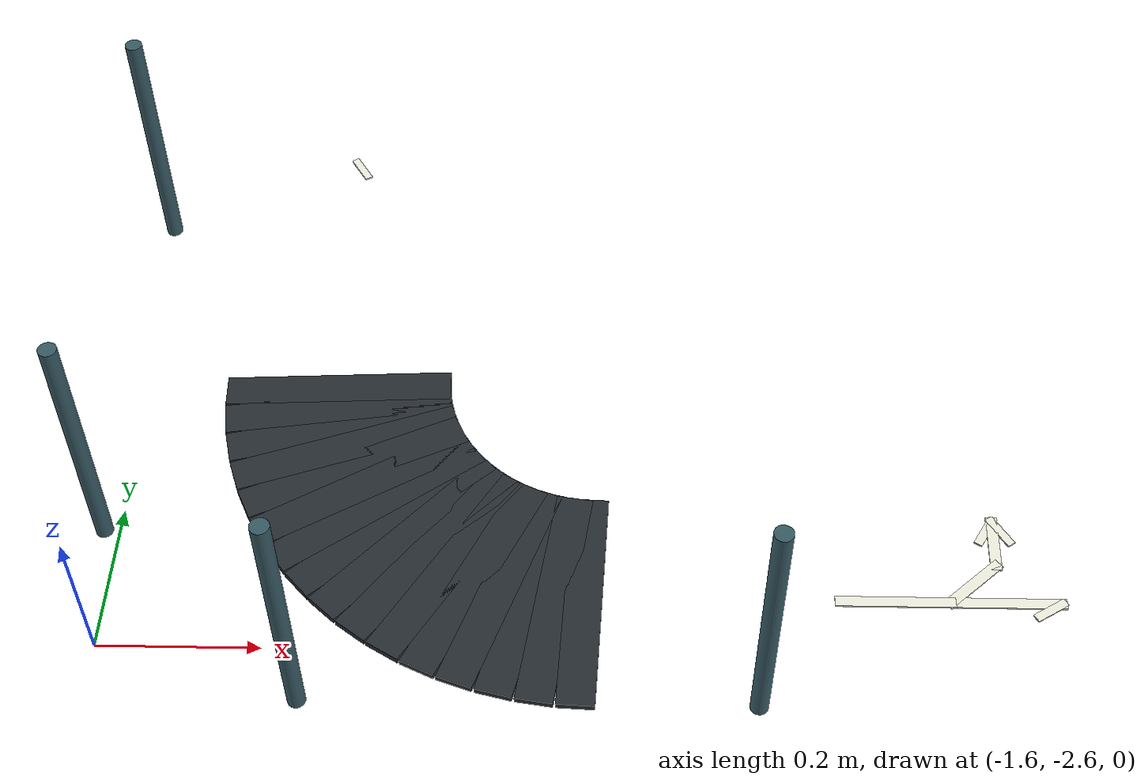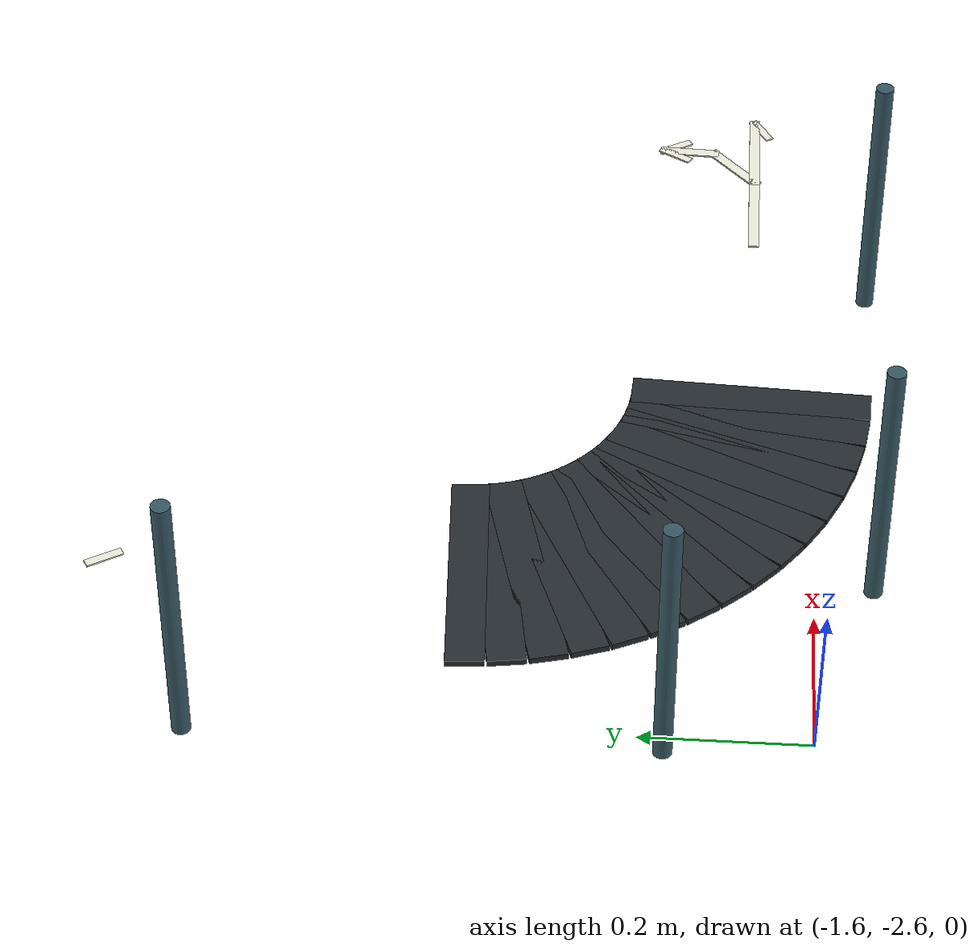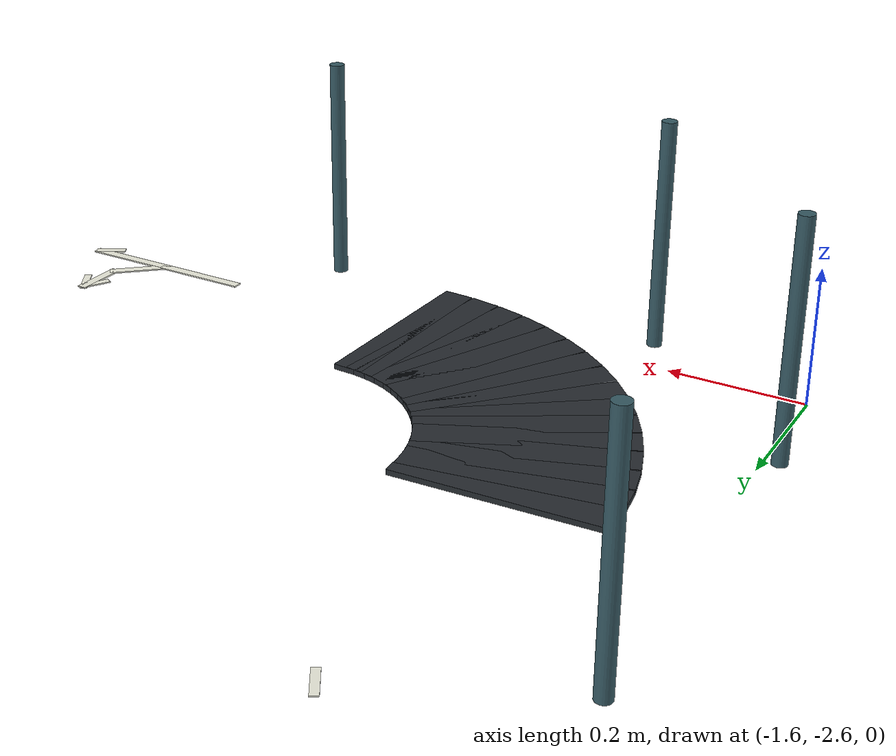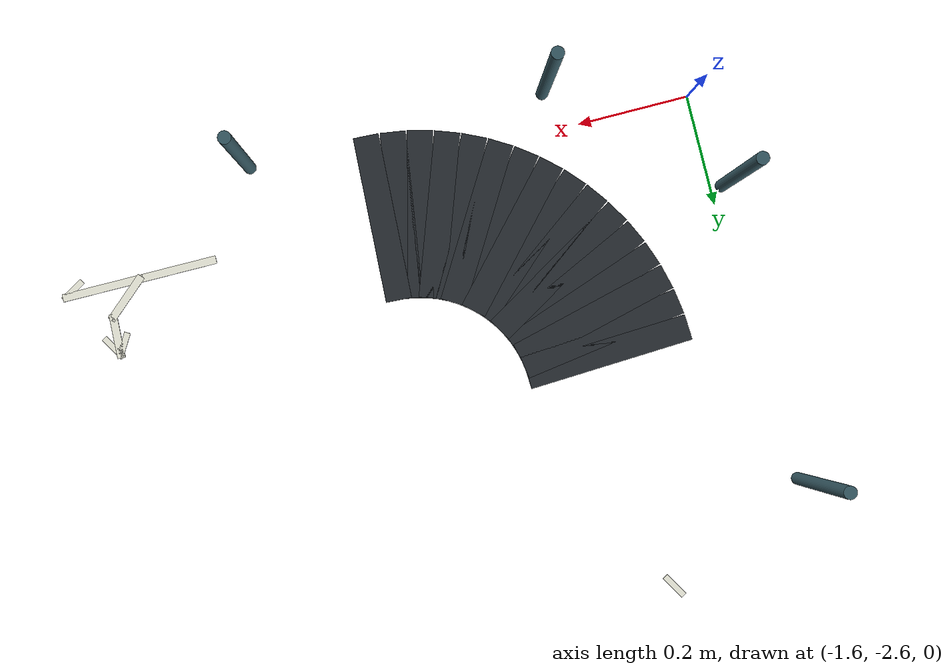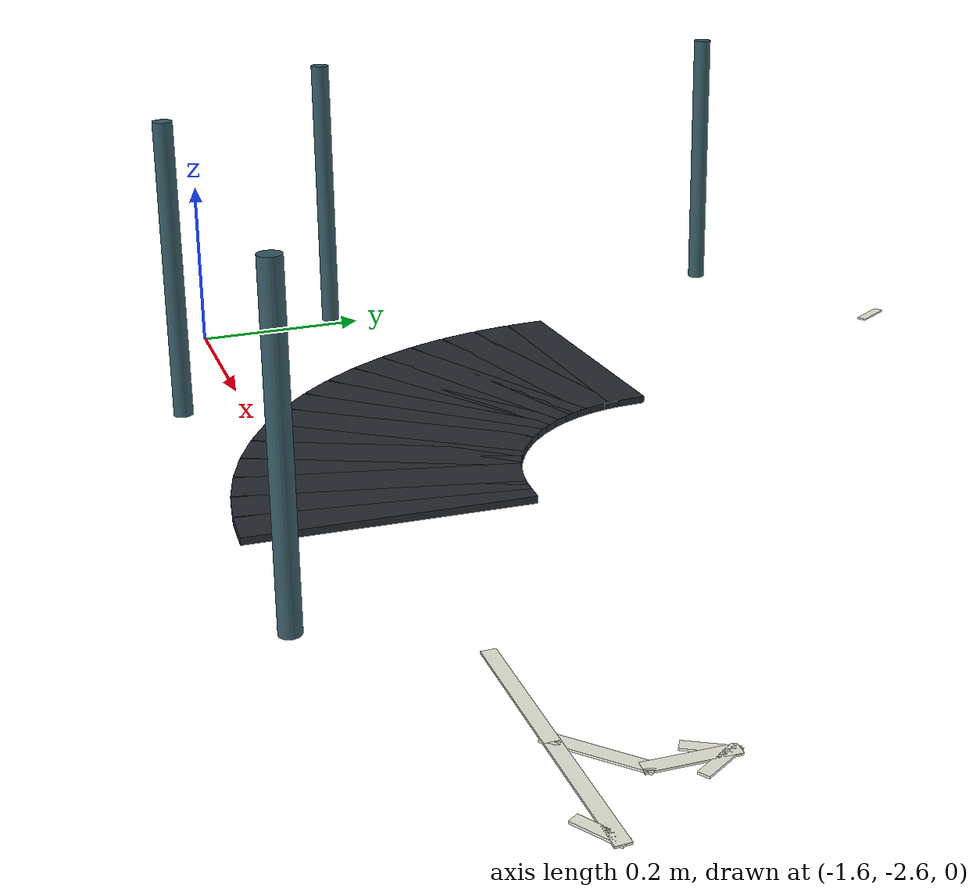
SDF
<sdf version="1.6">
 <world name="sandbox">
  <include><uri>model://sun</uri></include>
  <model name="fence_post_west_0">
   <static>true</static>
   <pose>-1.620000 -2.430000 0.170000 0.000000 0.000000 0.000000</pose>
   <link name="body">
    <collision name="collision">
     <geometry><cylinder><radius>0.011000</radius><length>0.340000</length></cylinder></geometry>
    </collision>
    <visual name="visual">
     <geometry><cylinder><radius>0.011000</radius><length>0.340000</length></cylinder></geometry>
     <material><ambient>0.22 0.36 0.40 1</ambient><diffuse>0.22 0.36 0.40 1</diffuse></material>
    </visual>
   </link>
  </model>
  <model name="fence_post_west_1">
   <static>true</static>
   <pose>-1.620000 -1.890000 0.170000 0.000000 0.000000 0.000000</pose>
   <link name="body">
    <collision name="collision">
     <geometry><cylinder><radius>0.011000</radius><length>0.340000</length></cylinder></geometry>
    </collision>
    <visual name="visual">
     <geometry><cylinder><radius>0.011000</radius><length>0.340000</length></cylinder></geometry>
     <material><ambient>0.22 0.36 0.40 1</ambient><diffuse>0.22 0.36 0.40 1</diffuse></material>
    </visual>
   </link>
  </model>
  <model name="fence_post_south_0">
   <static>true</static>
   <pose>-1.350000 -2.670000 0.170000 0.000000 0.000000 0.000000</pose>
   <link name="body">
    <collision name="collision">
     <geometry><cylinder><radius>0.011000</radius><length>0.340000</length></cylinder></geometry>
    </collision>
    <visual name="visual">
     <geometry><cylinder><radius>0.011000</radius><length>0.340000</length></cylinder></geometry>
     <material><ambient>0.22 0.36 0.40 1</ambient><diffuse>0.22 0.36 0.40 1</diffuse></material>
    </visual>
   </link>
  </model>
  <model name="fence_post_south_1">
   <static>true</static>
   <pose>-0.810000 -2.670000 0.170000 0.000000 0.000000 0.000000</pose>
   <link name="body">
    <collision name="collision">
     <geometry><cylinder><radius>0.011000</radius><length>0.340000</length></cylinder></geometry>
    </collision>
    <visual name="visual">
     <geometry><cylinder><radius>0.011000</radius><length>0.340000</length></cylinder></geometry>
     <material><ambient>0.22 0.36 0.40 1</ambient><diffuse>0.22 0.36 0.40 1</diffuse></material>
    </visual>
   </link>
  </model>
  <model name="corner_bottom_left_00">
   <static>true</static>
   <pose>-1.017153 -2.524157 0.000000 0.000000 -0.000000 3.092505</pose>
   <link name="body">
    <visual name="visual">
     <geometry><box><size>0.046347 0.300000 0.008000</size></box></geometry>
     <material><ambient>0.16 0.18 0.20 1</ambient><diffuse>0.16 0.18 0.20 1</diffuse></material>
    </visual>
   </link>
  </model>
  <model name="corner_bottom_left_01">
   <static>true</static>
   <pose>-1.051294 -2.520795 0.000000 0.000000 -0.000000 2.994330</pose>
   <link name="body">
    <visual name="visual">
     <geometry><box><size>0.046347 0.300000 0.008000</size></box></geometry>
     <material><ambient>0.16 0.18 0.20 1</ambient><diffuse>0.16 0.18 0.20 1</diffuse></material>
    </visual>
   </link>
  </model>
  <model name="corner_bottom_left_02">
   <static>true</static>
   <pose>-1.084941 -2.514102 0.000000 0.000000 -0.000000 2.896156</pose>
   <link name="body">
    <visual name="visual">
     <geometry><box><size>0.046347 0.300000 0.008000</size></box></geometry>
     <material><ambient>0.16 0.18 0.20 1</ambient><diffuse>0.16 0.18 0.20 1</diffuse></material>
    </visual>
   </link>
  </model>
  <model name="corner_bottom_left_03">
   <static>true</static>
   <pose>-1.117769 -2.504143 0.000000 0.000000 -0.000000 2.797981</pose>
   <link name="body">
    <visual name="visual">
     <geometry><box><size>0.046347 0.300000 0.008000</size></box></geometry>
     <material><ambient>0.16 0.18 0.20 1</ambient><diffuse>0.16 0.18 0.20 1</diffuse></material>
    </visual>
   </link>
  </model>
  <model name="corner_bottom_left_04">
   <static>true</static>
   <pose>-1.149464 -2.491015 0.000000 0.000000 -0.000000 2.699806</pose>
   <link name="body">
    <visual name="visual">
     <geometry><box><size>0.046347 0.300000 0.008000</size></box></geometry>
     <material><ambient>0.16 0.18 0.20 1</ambient><diffuse>0.16 0.18 0.20 1</diffuse></material>
    </visual>
   </link>
  </model>
  <model name="corner_bottom_left_05">
   <static>true</static>
   <pose>-1.179719 -2.474843 0.000000 0.000000 -0.000000 2.601631</pose>
   <link name="body">
    <visual name="visual">
     <geometry><box><size>0.046347 0.300000 0.008000</size></box></geometry>
     <material><ambient>0.16 0.18 0.20 1</ambient><diffuse>0.16 0.18 0.20 1</diffuse></material>
    </visual>
   </link>
  </model>
  <model name="corner_bottom_left_06">
   <static>true</static>
   <pose>-1.208244 -2.455784 0.000000 0.000000 -0.000000 2.503457</pose>
   <link name="body">
    <visual name="visual">
     <geometry><box><size>0.046347 0.300000 0.008000</size></box></geometry>
     <material><ambient>0.16 0.18 0.20 1</ambient><diffuse>0.16 0.18 0.20 1</diffuse></material>
    </visual>
   </link>
  </model>
  <model name="corner_bottom_left_07">
   <static>true</static>
   <pose>-1.234763 -2.434021 0.000000 0.000000 -0.000000 2.405282</pose>
   <link name="body">
    <visual name="visual">
     <geometry><box><size>0.046347 0.300000 0.008000</size></box></geometry>
     <material><ambient>0.16 0.18 0.20 1</ambient><diffuse>0.16 0.18 0.20 1</diffuse></material>
    </visual>
   </link>
  </model>
  <model name="corner_bottom_left_08">
   <static>true</static>
   <pose>-1.259021 -2.409763 0.000000 0.000000 -0.000000 2.307107</pose>
   <link name="body">
    <visual name="visual">
     <geometry><box><size>0.046347 0.300000 0.008000</size></box></geometry>
     <material><ambient>0.16 0.18 0.20 1</ambient><diffuse>0.16 0.18 0.20 1</diffuse></material>
    </visual>
   </link>
  </model>
  <model name="corner_bottom_left_09">
   <static>true</static>
   <pose>-1.280784 -2.383244 0.000000 0.000000 -0.000000 2.208932</pose>
   <link name="body">
    <visual name="visual">
     <geometry><box><size>0.046347 0.300000 0.008000</size></box></geometry>
     <material><ambient>0.16 0.18 0.20 1</ambient><diffuse>0.16 0.18 0.20 1</diffuse></material>
    </visual>
   </link>
  </model>
  <model name="corner_bottom_left_10">
   <static>true</static>
   <pose>-1.299843 -2.354719 0.000000 0.000000 -0.000000 2.110758</pose>
   <link name="body">
    <visual name="visual">
     <geometry><box><size>0.046347 0.300000 0.008000</size></box></geometry>
     <material><ambient>0.16 0.18 0.20 1</ambient><diffuse>0.16 0.18 0.20 1</diffuse></material>
    </visual>
   </link>
  </model>
  <model name="corner_bottom_left_11">
   <static>true</static>
   <pose>-1.316015 -2.324464 0.000000 0.000000 -0.000000 2.012583</pose>
   <link name="body">
    <visual name="visual">
     <geometry><box><size>0.046347 0.300000 0.008000</size></box></geometry>
     <material><ambient>0.16 0.18 0.20 1</ambient><diffuse>0.16 0.18 0.20 1</diffuse></material>
    </visual>
   </link>
  </model>
  <model name="corner_bottom_left_12">
   <static>true</static>
   <pose>-1.329143 -2.292769 0.000000 0.000000 -0.000000 1.914408</pose>
   <link name="body">
    <visual name="visual">
     <geometry><box><size>0.046347 0.300000 0.008000</size></box></geometry>
     <material><ambient>0.16 0.18 0.20 1</ambient><diffuse>0.16 0.18 0.20 1</diffuse></material>
    </visual>
   </link>
  </model>
  <model name="corner_bottom_left_13">
   <static>true</static>
   <pose>-1.339102 -2.259941 0.000000 0.000000 -0.000000 1.816233</pose>
   <link name="body">
    <visual name="visual">
     <geometry><box><size>0.046347 0.300000 0.008000</size></box></geometry>
     <material><ambient>0.16 0.18 0.20 1</ambient><diffuse>0.16 0.18 0.20 1</diffuse></material>
    </visual>
   </link>
  </model>
  <model name="corner_bottom_left_14">
   <static>true</static>
   <pose>-1.345795 -2.226294 0.000000 0.000000 -0.000000 1.718058</pose>
   <link name="body">
    <visual name="visual">
     <geometry><box><size>0.046347 0.300000 0.008000</size></box></geometry>
     <material><ambient>0.16 0.18 0.20 1</ambient><diffuse>0.16 0.18 0.20 1</diffuse></material>
    </visual>
   </link>
  </model>
  <model name="corner_bottom_left_15">
   <static>true</static>
   <pose>-1.349157 -2.192153 0.000000 0.000000 -0.000000 1.619884</pose>
   <link name="body">
    <visual name="visual">
     <geometry><box><size>0.046347 0.300000 0.008000</size></box></geometry>
     <material><ambient>0.16 0.18 0.20 1</ambient><diffuse>0.16 0.18 0.20 1</diffuse></material>
    </visual>
   </link>
  </model>
  <model name="outer_bottom_t_stem">
   <static>true</static>
   <pose>-0.637500 -2.525000 0.006000 0.000000 -0.000000 0.000000</pose>
   <link name="body">
    <visual name="visual">
     <geometry><box><size>0.147000 0.014000 0.002000</size></box></geometry>
     <material><ambient>0.96 0.96 0.90 1</ambient><diffuse>0.96 0.96 0.90 1</diffuse></material>
    </visual>
   </link>
  </model>
  <model name="outer_bottom_t_straight">
   <static>true</static>
   <pose>-0.502500 -2.525000 0.006000 0.000000 -0.000000 0.000000</pose>
   <link name="body">
    <visual name="visual">
     <geometry><box><size>0.147000 0.014000 0.002000</size></box></geometry>
     <material><ambient>0.96 0.96 0.90 1</ambient><diffuse>0.96 0.96 0.90 1</diffuse></material>
    </visual>
   </link>
  </model>
  <model name="outer_bottom_t_straight_head_-1">
   <static>true</static>
   <pose>-0.450000 -2.534000 0.006000 0.000000 -0.000000 0.540420</pose>
   <link name="body">
    <visual name="visual">
     <geometry><box><size>0.046986 0.011000 0.002000</size></box></geometry>
     <material><ambient>0.96 0.96 0.90 1</ambient><diffuse>0.96 0.96 0.90 1</diffuse></material>
    </visual>
   </link>
  </model>
  <model name="outer_bottom_t_left_branch">
   <static>true</static>
   <pose>-0.539000 -2.497500 0.006000 0.000000 -0.000000 0.725640</pose>
   <link name="body">
    <visual name="visual">
     <geometry><box><size>0.094879 0.014000 0.002000</size></box></geometry>
     <material><ambient>0.96 0.96 0.90 1</ambient><diffuse>0.96 0.96 0.90 1</diffuse></material>
    </visual>
   </link>
  </model>
  <model name="outer_bottom_t_left_turn">
   <static>true</static>
   <pose>-0.506500 -2.436000 0.006000 0.000000 -0.000000 1.526707</pose>
   <link name="body">
    <visual name="visual">
     <geometry><box><size>0.080066 0.014000 0.002000</size></box></geometry>
     <material><ambient>0.96 0.96 0.90 1</ambient><diffuse>0.96 0.96 0.90 1</diffuse></material>
    </visual>
   </link>
  </model>
  <model name="outer_bottom_t_left_head_-1">
   <static>true</static>
   <pose>-0.496000 -2.417000 0.006000 0.000000 -0.000000 2.111216</pose>
   <link name="body">
    <visual name="visual">
     <geometry><box><size>0.046986 0.011000 0.002000</size></box></geometry>
     <material><ambient>0.96 0.96 0.90 1</ambient><diffuse>0.96 0.96 0.90 1</diffuse></material>
    </visual>
   </link>
  </model>
  <model name="outer_bottom_t_left_head_1">
   <static>true</static>
   <pose>-0.514000 -2.417000 0.006000 0.000000 -0.000000 1.030377</pose>
   <link name="body">
    <visual name="visual">
     <geometry><box><size>0.046986 0.011000 0.002000</size></box></geometry>
     <material><ambient>0.96 0.96 0.90 1</ambient><diffuse>0.96 0.96 0.90 1</diffuse></material>
    </visual>
   </link>
  </model>
  <model name="outer_left_mid_straight_head_-1">
   <static>true</static>
   <pose>-1.359000 -1.760000 0.006000 0.000000 -0.000000 -1.030377</pose>
   <link name="body">
    <visual name="visual">
     <geometry><box><size>0.046986 0.011000 0.002000</size></box></geometry>
     <material><ambient>0.96 0.96 0.90 1</ambient><diffuse>0.96 0.96 0.90 1</diffuse></material>
    </visual>
   </link>
  </model>
 </world>
</sdf>
